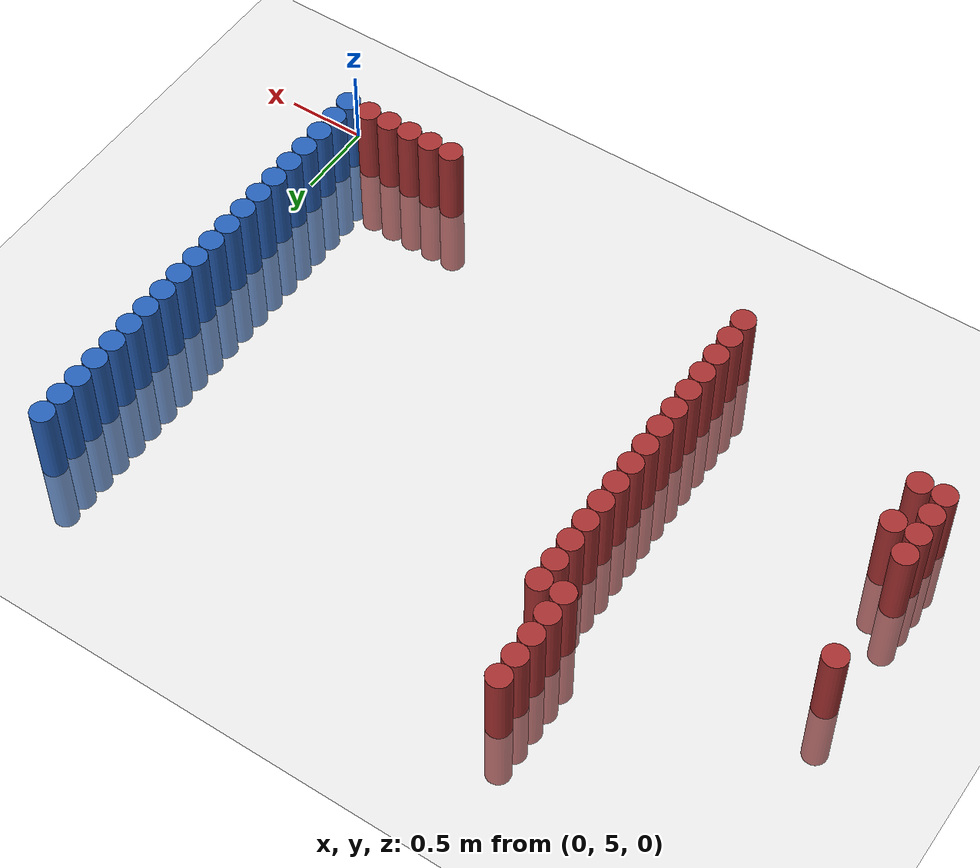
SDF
<sdf version="1.6">
 <world name="default">
  <model name="ground_plane">
   <static>1</static>
   <link name="link">
    <collision name="collision">
     <geometry><plane><normal>0 0 1</normal><size>100 100</size></plane></geometry>
     <surface><friction><ode><mu>100</mu><mu2>50</mu2></ode></friction></surface>
    </collision>
    <visual name="visual">
     <cast_shadows>0</cast_shadows>
     <geometry><plane><normal>0 0 1</normal><size>100 100</size></plane></geometry>
     <material>
      <script><uri>file://media/materials/scripts/gazebo.material</uri><name>Gazebo/Grey</name></script>
     </material>
    </visual>
   </link>
  </model>
  <model name="unit_cylinder_247">
   <static>1</static>
   <pose>-4.425000 5.775000 0.000000 0.000000 0.000000 0.000000</pose>
   <link name="link">
    <inertial>
     <mass>1</mass>
     <inertia><ixx>0.145833</ixx><ixy>0</ixy><ixz>0</ixz><iyy>0.145833</iyy><iyz>0</iyz><izz>0.125</izz></inertia>
    </inertial>
    <collision name="collision">
     <geometry><cylinder><radius>0.075000</radius><length>1</length></cylinder></geometry>
    </collision>
    <visual name="visual">
     <geometry><cylinder><radius>0.075000</radius><length>1</length></cylinder></geometry>
     <material>
      <ambient>0.648000 0.192000 0.192000 1</ambient>
      <diffuse>0.648000 0.192000 0.192000 1</diffuse>
     </material>
     <material>
      <script><name>Gazebo/Grey</name><uri>file://media/materials/scripts/gazebo.material</uri></script>
     </material>
    </visual>
   </link>
  </model>
  <model name="unit_cylinder_248">
   <static>1</static>
   <pose>-4.425000 5.925000 0.000000 0.000000 0.000000 0.000000</pose>
   <link name="link">
    <inertial>
     <mass>1</mass>
     <inertia><ixx>0.145833</ixx><ixy>0</ixy><ixz>0</ixz><iyy>0.145833</iyy><iyz>0</iyz><izz>0.125</izz></inertia>
    </inertial>
    <collision name="collision">
     <geometry><cylinder><radius>0.075000</radius><length>1</length></cylinder></geometry>
    </collision>
    <visual name="visual">
     <geometry><cylinder><radius>0.075000</radius><length>1</length></cylinder></geometry>
     <material>
      <ambient>0.648000 0.192000 0.192000 1</ambient>
      <diffuse>0.648000 0.192000 0.192000 1</diffuse>
     </material>
     <material>
      <script><name>Gazebo/Grey</name><uri>file://media/materials/scripts/gazebo.material</uri></script>
     </material>
    </visual>
   </link>
  </model>
  <model name="unit_cylinder_249">
   <static>1</static>
   <pose>-4.425000 6.075000 0.000000 0.000000 0.000000 0.000000</pose>
   <link name="link">
    <inertial>
     <mass>1</mass>
     <inertia><ixx>0.145833</ixx><ixy>0</ixy><ixz>0</ixz><iyy>0.145833</iyy><iyz>0</iyz><izz>0.125</izz></inertia>
    </inertial>
    <collision name="collision">
     <geometry><cylinder><radius>0.075000</radius><length>1</length></cylinder></geometry>
    </collision>
    <visual name="visual">
     <geometry><cylinder><radius>0.075000</radius><length>1</length></cylinder></geometry>
     <material>
      <ambient>0.648000 0.192000 0.192000 1</ambient>
      <diffuse>0.648000 0.192000 0.192000 1</diffuse>
     </material>
     <material>
      <script><name>Gazebo/Grey</name><uri>file://media/materials/scripts/gazebo.material</uri></script>
     </material>
    </visual>
   </link>
  </model>
  <model name="unit_cylinder_250">
   <static>1</static>
   <pose>-4.425000 6.225000 0.000000 0.000000 0.000000 0.000000</pose>
   <link name="link">
    <inertial>
     <mass>1</mass>
     <inertia><ixx>0.145833</ixx><ixy>0</ixy><ixz>0</ixz><iyy>0.145833</iyy><iyz>0</iyz><izz>0.125</izz></inertia>
    </inertial>
    <collision name="collision">
     <geometry><cylinder><radius>0.075000</radius><length>1</length></cylinder></geometry>
    </collision>
    <visual name="visual">
     <geometry><cylinder><radius>0.075000</radius><length>1</length></cylinder></geometry>
     <material>
      <ambient>0.648000 0.192000 0.192000 1</ambient>
      <diffuse>0.648000 0.192000 0.192000 1</diffuse>
     </material>
     <material>
      <script><name>Gazebo/Grey</name><uri>file://media/materials/scripts/gazebo.material</uri></script>
     </material>
    </visual>
   </link>
  </model>
  <model name="unit_cylinder_251">
   <static>1</static>
   <pose>-4.425000 6.975000 0.000000 0.000000 0.000000 0.000000</pose>
   <link name="link">
    <inertial>
     <mass>1</mass>
     <inertia><ixx>0.145833</ixx><ixy>0</ixy><ixz>0</ixz><iyy>0.145833</iyy><iyz>0</iyz><izz>0.125</izz></inertia>
    </inertial>
    <collision name="collision">
     <geometry><cylinder><radius>0.075000</radius><length>1</length></cylinder></geometry>
    </collision>
    <visual name="visual">
     <geometry><cylinder><radius>0.075000</radius><length>1</length></cylinder></geometry>
     <material>
      <ambient>0.648000 0.192000 0.192000 1</ambient>
      <diffuse>0.648000 0.192000 0.192000 1</diffuse>
     </material>
     <material>
      <script><name>Gazebo/Grey</name><uri>file://media/materials/scripts/gazebo.material</uri></script>
     </material>
    </visual>
   </link>
  </model>
  <model name="unit_cylinder_252">
   <static>1</static>
   <pose>-4.275000 5.775000 0.000000 0.000000 0.000000 0.000000</pose>
   <link name="link">
    <inertial>
     <mass>1</mass>
     <inertia><ixx>0.145833</ixx><ixy>0</ixy><ixz>0</ixz><iyy>0.145833</iyy><iyz>0</iyz><izz>0.125</izz></inertia>
    </inertial>
    <collision name="collision">
     <geometry><cylinder><radius>0.075000</radius><length>1</length></cylinder></geometry>
    </collision>
    <visual name="visual">
     <geometry><cylinder><radius>0.075000</radius><length>1</length></cylinder></geometry>
     <material>
      <ambient>0.648000 0.192000 0.192000 1</ambient>
      <diffuse>0.648000 0.192000 0.192000 1</diffuse>
     </material>
     <material>
      <script><name>Gazebo/Grey</name><uri>file://media/materials/scripts/gazebo.material</uri></script>
     </material>
    </visual>
   </link>
  </model>
  <model name="unit_cylinder_253">
   <static>1</static>
   <pose>-4.275000 6.075000 0.000000 0.000000 0.000000 0.000000</pose>
   <link name="link">
    <inertial>
     <mass>1</mass>
     <inertia><ixx>0.145833</ixx><ixy>0</ixy><ixz>0</ixz><iyy>0.145833</iyy><iyz>0</iyz><izz>0.125</izz></inertia>
    </inertial>
    <collision name="collision">
     <geometry><cylinder><radius>0.075000</radius><length>1</length></cylinder></geometry>
    </collision>
    <visual name="visual">
     <geometry><cylinder><radius>0.075000</radius><length>1</length></cylinder></geometry>
     <material>
      <ambient>0.648000 0.192000 0.192000 1</ambient>
      <diffuse>0.648000 0.192000 0.192000 1</diffuse>
     </material>
     <material>
      <script><name>Gazebo/Grey</name><uri>file://media/materials/scripts/gazebo.material</uri></script>
     </material>
    </visual>
   </link>
  </model>
  <model name="unit_cylinder_275">
   <static>1</static>
   <pose>-3.075000 7.425000 0.000000 0.000000 0.000000 0.000000</pose>
   <link name="link">
    <inertial>
     <mass>1</mass>
     <inertia><ixx>0.145833</ixx><ixy>0</ixy><ixz>0</ixz><iyy>0.145833</iyy><iyz>0</iyz><izz>0.125</izz></inertia>
    </inertial>
    <collision name="collision">
     <geometry><cylinder><radius>0.075000</radius><length>1</length></cylinder></geometry>
    </collision>
    <visual name="visual">
     <geometry><cylinder><radius>0.075000</radius><length>1</length></cylinder></geometry>
     <material>
      <ambient>0.648000 0.192000 0.192000 1</ambient>
      <diffuse>0.648000 0.192000 0.192000 1</diffuse>
     </material>
     <material>
      <script><name>Gazebo/Grey</name><uri>file://media/materials/scripts/gazebo.material</uri></script>
     </material>
    </visual>
   </link>
  </model>
  <model name="unit_cylinder_276">
   <static>1</static>
   <pose>-3.075000 7.575000 0.000000 0.000000 0.000000 0.000000</pose>
   <link name="link">
    <inertial>
     <mass>1</mass>
     <inertia><ixx>0.145833</ixx><ixy>0</ixy><ixz>0</ixz><iyy>0.145833</iyy><iyz>0</iyz><izz>0.125</izz></inertia>
    </inertial>
    <collision name="collision">
     <geometry><cylinder><radius>0.075000</radius><length>1</length></cylinder></geometry>
    </collision>
    <visual name="visual">
     <geometry><cylinder><radius>0.075000</radius><length>1</length></cylinder></geometry>
     <material>
      <ambient>0.648000 0.192000 0.192000 1</ambient>
      <diffuse>0.648000 0.192000 0.192000 1</diffuse>
     </material>
     <material>
      <script><name>Gazebo/Grey</name><uri>file://media/materials/scripts/gazebo.material</uri></script>
     </material>
    </visual>
   </link>
  </model>
  <model name="unit_cylinder_277">
   <static>1</static>
   <pose>-3.075000 7.725000 0.000000 0.000000 0.000000 0.000000</pose>
   <link name="link">
    <inertial>
     <mass>1</mass>
     <inertia><ixx>0.145833</ixx><ixy>0</ixy><ixz>0</ixz><iyy>0.145833</iyy><iyz>0</iyz><izz>0.125</izz></inertia>
    </inertial>
    <collision name="collision">
     <geometry><cylinder><radius>0.075000</radius><length>1</length></cylinder></geometry>
    </collision>
    <visual name="visual">
     <geometry><cylinder><radius>0.075000</radius><length>1</length></cylinder></geometry>
     <material>
      <ambient>0.648000 0.192000 0.192000 1</ambient>
      <diffuse>0.648000 0.192000 0.192000 1</diffuse>
     </material>
     <material>
      <script><name>Gazebo/Grey</name><uri>file://media/materials/scripts/gazebo.material</uri></script>
     </material>
    </visual>
   </link>
  </model>
  <model name="unit_cylinder_278">
   <static>1</static>
   <pose>-3.075000 7.875000 0.000000 0.000000 0.000000 0.000000</pose>
   <link name="link">
    <inertial>
     <mass>1</mass>
     <inertia><ixx>0.145833</ixx><ixy>0</ixy><ixz>0</ixz><iyy>0.145833</iyy><iyz>0</iyz><izz>0.125</izz></inertia>
    </inertial>
    <collision name="collision">
     <geometry><cylinder><radius>0.075000</radius><length>1</length></cylinder></geometry>
    </collision>
    <visual name="visual">
     <geometry><cylinder><radius>0.075000</radius><length>1</length></cylinder></geometry>
     <material>
      <ambient>0.648000 0.192000 0.192000 1</ambient>
      <diffuse>0.648000 0.192000 0.192000 1</diffuse>
     </material>
     <material>
      <script><name>Gazebo/Grey</name><uri>file://media/materials/scripts/gazebo.material</uri></script>
     </material>
    </visual>
   </link>
  </model>
  <model name="unit_cylinder_279">
   <static>1</static>
   <pose>-3.075000 8.025000 0.000000 0.000000 0.000000 0.000000</pose>
   <link name="link">
    <inertial>
     <mass>1</mass>
     <inertia><ixx>0.145833</ixx><ixy>0</ixy><ixz>0</ixz><iyy>0.145833</iyy><iyz>0</iyz><izz>0.125</izz></inertia>
    </inertial>
    <collision name="collision">
     <geometry><cylinder><radius>0.075000</radius><length>1</length></cylinder></geometry>
    </collision>
    <visual name="visual">
     <geometry><cylinder><radius>0.075000</radius><length>1</length></cylinder></geometry>
     <material>
      <ambient>0.648000 0.192000 0.192000 1</ambient>
      <diffuse>0.648000 0.192000 0.192000 1</diffuse>
     </material>
     <material>
      <script><name>Gazebo/Grey</name><uri>file://media/materials/scripts/gazebo.material</uri></script>
     </material>
    </visual>
   </link>
  </model>
  <model name="unit_cylinder_284">
   <static>1</static>
   <pose>-2.925000 5.325000 0.000000 0.000000 0.000000 0.000000</pose>
   <link name="link">
    <inertial>
     <mass>1</mass>
     <inertia><ixx>0.145833</ixx><ixy>0</ixy><ixz>0</ixz><iyy>0.145833</iyy><iyz>0</iyz><izz>0.125</izz></inertia>
    </inertial>
    <collision name="collision">
     <geometry><cylinder><radius>0.075000</radius><length>1</length></cylinder></geometry>
    </collision>
    <visual name="visual">
     <geometry><cylinder><radius>0.075000</radius><length>1</length></cylinder></geometry>
     <material>
      <ambient>0.648000 0.192000 0.192000 1</ambient>
      <diffuse>0.648000 0.192000 0.192000 1</diffuse>
     </material>
     <material>
      <script><name>Gazebo/Grey</name><uri>file://media/materials/scripts/gazebo.material</uri></script>
     </material>
    </visual>
   </link>
  </model>
  <model name="unit_cylinder_285">
   <static>1</static>
   <pose>-2.925000 5.475000 0.000000 0.000000 0.000000 0.000000</pose>
   <link name="link">
    <inertial>
     <mass>1</mass>
     <inertia><ixx>0.145833</ixx><ixy>0</ixy><ixz>0</ixz><iyy>0.145833</iyy><iyz>0</iyz><izz>0.125</izz></inertia>
    </inertial>
    <collision name="collision">
     <geometry><cylinder><radius>0.075000</radius><length>1</length></cylinder></geometry>
    </collision>
    <visual name="visual">
     <geometry><cylinder><radius>0.075000</radius><length>1</length></cylinder></geometry>
     <material>
      <ambient>0.648000 0.192000 0.192000 1</ambient>
      <diffuse>0.648000 0.192000 0.192000 1</diffuse>
     </material>
     <material>
      <script><name>Gazebo/Grey</name><uri>file://media/materials/scripts/gazebo.material</uri></script>
     </material>
    </visual>
   </link>
  </model>
  <model name="unit_cylinder_286">
   <static>1</static>
   <pose>-2.925000 5.625000 0.000000 0.000000 0.000000 0.000000</pose>
   <link name="link">
    <inertial>
     <mass>1</mass>
     <inertia><ixx>0.145833</ixx><ixy>0</ixy><ixz>0</ixz><iyy>0.145833</iyy><iyz>0</iyz><izz>0.125</izz></inertia>
    </inertial>
    <collision name="collision">
     <geometry><cylinder><radius>0.075000</radius><length>1</length></cylinder></geometry>
    </collision>
    <visual name="visual">
     <geometry><cylinder><radius>0.075000</radius><length>1</length></cylinder></geometry>
     <material>
      <ambient>0.648000 0.192000 0.192000 1</ambient>
      <diffuse>0.648000 0.192000 0.192000 1</diffuse>
     </material>
     <material>
      <script><name>Gazebo/Grey</name><uri>file://media/materials/scripts/gazebo.material</uri></script>
     </material>
    </visual>
   </link>
  </model>
  <model name="unit_cylinder_287">
   <static>1</static>
   <pose>-2.925000 5.775000 0.000000 0.000000 0.000000 0.000000</pose>
   <link name="link">
    <inertial>
     <mass>1</mass>
     <inertia><ixx>0.145833</ixx><ixy>0</ixy><ixz>0</ixz><iyy>0.145833</iyy><iyz>0</iyz><izz>0.125</izz></inertia>
    </inertial>
    <collision name="collision">
     <geometry><cylinder><radius>0.075000</radius><length>1</length></cylinder></geometry>
    </collision>
    <visual name="visual">
     <geometry><cylinder><radius>0.075000</radius><length>1</length></cylinder></geometry>
     <material>
      <ambient>0.648000 0.192000 0.192000 1</ambient>
      <diffuse>0.648000 0.192000 0.192000 1</diffuse>
     </material>
     <material>
      <script><name>Gazebo/Grey</name><uri>file://media/materials/scripts/gazebo.material</uri></script>
     </material>
    </visual>
   </link>
  </model>
  <model name="unit_cylinder_288">
   <static>1</static>
   <pose>-2.925000 5.925000 0.000000 0.000000 0.000000 0.000000</pose>
   <link name="link">
    <inertial>
     <mass>1</mass>
     <inertia><ixx>0.145833</ixx><ixy>0</ixy><ixz>0</ixz><iyy>0.145833</iyy><iyz>0</iyz><izz>0.125</izz></inertia>
    </inertial>
    <collision name="collision">
     <geometry><cylinder><radius>0.075000</radius><length>1</length></cylinder></geometry>
    </collision>
    <visual name="visual">
     <geometry><cylinder><radius>0.075000</radius><length>1</length></cylinder></geometry>
     <material>
      <ambient>0.648000 0.192000 0.192000 1</ambient>
      <diffuse>0.648000 0.192000 0.192000 1</diffuse>
     </material>
     <material>
      <script><name>Gazebo/Grey</name><uri>file://media/materials/scripts/gazebo.material</uri></script>
     </material>
    </visual>
   </link>
  </model>
  <model name="unit_cylinder_289">
   <static>1</static>
   <pose>-2.925000 6.075000 0.000000 0.000000 0.000000 0.000000</pose>
   <link name="link">
    <inertial>
     <mass>1</mass>
     <inertia><ixx>0.145833</ixx><ixy>0</ixy><ixz>0</ixz><iyy>0.145833</iyy><iyz>0</iyz><izz>0.125</izz></inertia>
    </inertial>
    <collision name="collision">
     <geometry><cylinder><radius>0.075000</radius><length>1</length></cylinder></geometry>
    </collision>
    <visual name="visual">
     <geometry><cylinder><radius>0.075000</radius><length>1</length></cylinder></geometry>
     <material>
      <ambient>0.648000 0.192000 0.192000 1</ambient>
      <diffuse>0.648000 0.192000 0.192000 1</diffuse>
     </material>
     <material>
      <script><name>Gazebo/Grey</name><uri>file://media/materials/scripts/gazebo.material</uri></script>
     </material>
    </visual>
   </link>
  </model>
  <model name="unit_cylinder_290">
   <static>1</static>
   <pose>-2.925000 6.225000 0.000000 0.000000 0.000000 0.000000</pose>
   <link name="link">
    <inertial>
     <mass>1</mass>
     <inertia><ixx>0.145833</ixx><ixy>0</ixy><ixz>0</ixz><iyy>0.145833</iyy><iyz>0</iyz><izz>0.125</izz></inertia>
    </inertial>
    <collision name="collision">
     <geometry><cylinder><radius>0.075000</radius><length>1</length></cylinder></geometry>
    </collision>
    <visual name="visual">
     <geometry><cylinder><radius>0.075000</radius><length>1</length></cylinder></geometry>
     <material>
      <ambient>0.648000 0.192000 0.192000 1</ambient>
      <diffuse>0.648000 0.192000 0.192000 1</diffuse>
     </material>
     <material>
      <script><name>Gazebo/Grey</name><uri>file://media/materials/scripts/gazebo.material</uri></script>
     </material>
    </visual>
   </link>
  </model>
  <model name="unit_cylinder_291">
   <static>1</static>
   <pose>-2.925000 6.375000 0.000000 0.000000 0.000000 0.000000</pose>
   <link name="link">
    <inertial>
     <mass>1</mass>
     <inertia><ixx>0.145833</ixx><ixy>0</ixy><ixz>0</ixz><iyy>0.145833</iyy><iyz>0</iyz><izz>0.125</izz></inertia>
    </inertial>
    <collision name="collision">
     <geometry><cylinder><radius>0.075000</radius><length>1</length></cylinder></geometry>
    </collision>
    <visual name="visual">
     <geometry><cylinder><radius>0.075000</radius><length>1</length></cylinder></geometry>
     <material>
      <ambient>0.648000 0.192000 0.192000 1</ambient>
      <diffuse>0.648000 0.192000 0.192000 1</diffuse>
     </material>
     <material>
      <script><name>Gazebo/Grey</name><uri>file://media/materials/scripts/gazebo.material</uri></script>
     </material>
    </visual>
   </link>
  </model>
  <model name="unit_cylinder_292">
   <static>1</static>
   <pose>-2.925000 6.525000 0.000000 0.000000 0.000000 0.000000</pose>
   <link name="link">
    <inertial>
     <mass>1</mass>
     <inertia><ixx>0.145833</ixx><ixy>0</ixy><ixz>0</ixz><iyy>0.145833</iyy><iyz>0</iyz><izz>0.125</izz></inertia>
    </inertial>
    <collision name="collision">
     <geometry><cylinder><radius>0.075000</radius><length>1</length></cylinder></geometry>
    </collision>
    <visual name="visual">
     <geometry><cylinder><radius>0.075000</radius><length>1</length></cylinder></geometry>
     <material>
      <ambient>0.648000 0.192000 0.192000 1</ambient>
      <diffuse>0.648000 0.192000 0.192000 1</diffuse>
     </material>
     <material>
      <script><name>Gazebo/Grey</name><uri>file://media/materials/scripts/gazebo.material</uri></script>
     </material>
    </visual>
   </link>
  </model>
  <model name="unit_cylinder_293">
   <static>1</static>
   <pose>-2.925000 6.675000 0.000000 0.000000 0.000000 0.000000</pose>
   <link name="link">
    <inertial>
     <mass>1</mass>
     <inertia><ixx>0.145833</ixx><ixy>0</ixy><ixz>0</ixz><iyy>0.145833</iyy><iyz>0</iyz><izz>0.125</izz></inertia>
    </inertial>
    <collision name="collision">
     <geometry><cylinder><radius>0.075000</radius><length>1</length></cylinder></geometry>
    </collision>
    <visual name="visual">
     <geometry><cylinder><radius>0.075000</radius><length>1</length></cylinder></geometry>
     <material>
      <ambient>0.648000 0.192000 0.192000 1</ambient>
      <diffuse>0.648000 0.192000 0.192000 1</diffuse>
     </material>
     <material>
      <script><name>Gazebo/Grey</name><uri>file://media/materials/scripts/gazebo.material</uri></script>
     </material>
    </visual>
   </link>
  </model>
  <model name="unit_cylinder_294">
   <static>1</static>
   <pose>-2.925000 6.825000 0.000000 0.000000 0.000000 0.000000</pose>
   <link name="link">
    <inertial>
     <mass>1</mass>
     <inertia><ixx>0.145833</ixx><ixy>0</ixy><ixz>0</ixz><iyy>0.145833</iyy><iyz>0</iyz><izz>0.125</izz></inertia>
    </inertial>
    <collision name="collision">
     <geometry><cylinder><radius>0.075000</radius><length>1</length></cylinder></geometry>
    </collision>
    <visual name="visual">
     <geometry><cylinder><radius>0.075000</radius><length>1</length></cylinder></geometry>
     <material>
      <ambient>0.648000 0.192000 0.192000 1</ambient>
      <diffuse>0.648000 0.192000 0.192000 1</diffuse>
     </material>
     <material>
      <script><name>Gazebo/Grey</name><uri>file://media/materials/scripts/gazebo.material</uri></script>
     </material>
    </visual>
   </link>
  </model>
  <model name="unit_cylinder_295">
   <static>1</static>
   <pose>-2.925000 6.975000 0.000000 0.000000 0.000000 0.000000</pose>
   <link name="link">
    <inertial>
     <mass>1</mass>
     <inertia><ixx>0.145833</ixx><ixy>0</ixy><ixz>0</ixz><iyy>0.145833</iyy><iyz>0</iyz><izz>0.125</izz></inertia>
    </inertial>
    <collision name="collision">
     <geometry><cylinder><radius>0.075000</radius><length>1</length></cylinder></geometry>
    </collision>
    <visual name="visual">
     <geometry><cylinder><radius>0.075000</radius><length>1</length></cylinder></geometry>
     <material>
      <ambient>0.648000 0.192000 0.192000 1</ambient>
      <diffuse>0.648000 0.192000 0.192000 1</diffuse>
     </material>
     <material>
      <script><name>Gazebo/Grey</name><uri>file://media/materials/scripts/gazebo.material</uri></script>
     </material>
    </visual>
   </link>
  </model>
  <model name="unit_cylinder_296">
   <static>1</static>
   <pose>-2.925000 7.125000 0.000000 0.000000 0.000000 0.000000</pose>
   <link name="link">
    <inertial>
     <mass>1</mass>
     <inertia><ixx>0.145833</ixx><ixy>0</ixy><ixz>0</ixz><iyy>0.145833</iyy><iyz>0</iyz><izz>0.125</izz></inertia>
    </inertial>
    <collision name="collision">
     <geometry><cylinder><radius>0.075000</radius><length>1</length></cylinder></geometry>
    </collision>
    <visual name="visual">
     <geometry><cylinder><radius>0.075000</radius><length>1</length></cylinder></geometry>
     <material>
      <ambient>0.648000 0.192000 0.192000 1</ambient>
      <diffuse>0.648000 0.192000 0.192000 1</diffuse>
     </material>
     <material>
      <script><name>Gazebo/Grey</name><uri>file://media/materials/scripts/gazebo.material</uri></script>
     </material>
    </visual>
   </link>
  </model>
  <model name="unit_cylinder_297">
   <static>1</static>
   <pose>-2.925000 7.275000 0.000000 0.000000 0.000000 0.000000</pose>
   <link name="link">
    <inertial>
     <mass>1</mass>
     <inertia><ixx>0.145833</ixx><ixy>0</ixy><ixz>0</ixz><iyy>0.145833</iyy><iyz>0</iyz><izz>0.125</izz></inertia>
    </inertial>
    <collision name="collision">
     <geometry><cylinder><radius>0.075000</radius><length>1</length></cylinder></geometry>
    </collision>
    <visual name="visual">
     <geometry><cylinder><radius>0.075000</radius><length>1</length></cylinder></geometry>
     <material>
      <ambient>0.648000 0.192000 0.192000 1</ambient>
      <diffuse>0.648000 0.192000 0.192000 1</diffuse>
     </material>
     <material>
      <script><name>Gazebo/Grey</name><uri>file://media/materials/scripts/gazebo.material</uri></script>
     </material>
    </visual>
   </link>
  </model>
  <model name="unit_cylinder_298">
   <static>1</static>
   <pose>-2.925000 7.425000 0.000000 0.000000 0.000000 0.000000</pose>
   <link name="link">
    <inertial>
     <mass>1</mass>
     <inertia><ixx>0.145833</ixx><ixy>0</ixy><ixz>0</ixz><iyy>0.145833</iyy><iyz>0</iyz><izz>0.125</izz></inertia>
    </inertial>
    <collision name="collision">
     <geometry><cylinder><radius>0.075000</radius><length>1</length></cylinder></geometry>
    </collision>
    <visual name="visual">
     <geometry><cylinder><radius>0.075000</radius><length>1</length></cylinder></geometry>
     <material>
      <ambient>0.648000 0.192000 0.192000 1</ambient>
      <diffuse>0.648000 0.192000 0.192000 1</diffuse>
     </material>
     <material>
      <script><name>Gazebo/Grey</name><uri>file://media/materials/scripts/gazebo.material</uri></script>
     </material>
    </visual>
   </link>
  </model>
  <model name="unit_cylinder_326">
   <static>1</static>
   <pose>-0.825000 5.175000 0.000000 0.000000 0.000000 0.000000</pose>
   <link name="link">
    <inertial>
     <mass>1</mass>
     <inertia><ixx>0.145833</ixx><ixy>0</ixy><ixz>0</ixz><iyy>0.145833</iyy><iyz>0</iyz><izz>0.125</izz></inertia>
    </inertial>
    <collision name="collision">
     <geometry><cylinder><radius>0.075000</radius><length>1</length></cylinder></geometry>
    </collision>
    <visual name="visual">
     <geometry><cylinder><radius>0.075000</radius><length>1</length></cylinder></geometry>
     <material>
      <ambient>0.648000 0.192000 0.192000 1</ambient>
      <diffuse>0.648000 0.192000 0.192000 1</diffuse>
     </material>
     <material>
      <script><name>Gazebo/Grey</name><uri>file://media/materials/scripts/gazebo.material</uri></script>
     </material>
    </visual>
   </link>
  </model>
  <model name="unit_cylinder_328">
   <static>1</static>
   <pose>-0.675000 5.175000 0.000000 0.000000 0.000000 0.000000</pose>
   <link name="link">
    <inertial>
     <mass>1</mass>
     <inertia><ixx>0.145833</ixx><ixy>0</ixy><ixz>0</ixz><iyy>0.145833</iyy><iyz>0</iyz><izz>0.125</izz></inertia>
    </inertial>
    <collision name="collision">
     <geometry><cylinder><radius>0.075000</radius><length>1</length></cylinder></geometry>
    </collision>
    <visual name="visual">
     <geometry><cylinder><radius>0.075000</radius><length>1</length></cylinder></geometry>
     <material>
      <ambient>0.648000 0.192000 0.192000 1</ambient>
      <diffuse>0.648000 0.192000 0.192000 1</diffuse>
     </material>
     <material>
      <script><name>Gazebo/Grey</name><uri>file://media/materials/scripts/gazebo.material</uri></script>
     </material>
    </visual>
   </link>
  </model>
  <model name="unit_cylinder_330">
   <static>1</static>
   <pose>-0.525000 5.175000 0.000000 0.000000 0.000000 0.000000</pose>
   <link name="link">
    <inertial>
     <mass>1</mass>
     <inertia><ixx>0.145833</ixx><ixy>0</ixy><ixz>0</ixz><iyy>0.145833</iyy><iyz>0</iyz><izz>0.125</izz></inertia>
    </inertial>
    <collision name="collision">
     <geometry><cylinder><radius>0.075000</radius><length>1</length></cylinder></geometry>
    </collision>
    <visual name="visual">
     <geometry><cylinder><radius>0.075000</radius><length>1</length></cylinder></geometry>
     <material>
      <ambient>0.648000 0.192000 0.192000 1</ambient>
      <diffuse>0.648000 0.192000 0.192000 1</diffuse>
     </material>
     <material>
      <script><name>Gazebo/Grey</name><uri>file://media/materials/scripts/gazebo.material</uri></script>
     </material>
    </visual>
   </link>
  </model>
  <model name="unit_cylinder_332">
   <static>1</static>
   <pose>-0.375000 5.175000 0.000000 0.000000 0.000000 0.000000</pose>
   <link name="link">
    <inertial>
     <mass>1</mass>
     <inertia><ixx>0.145833</ixx><ixy>0</ixy><ixz>0</ixz><iyy>0.145833</iyy><iyz>0</iyz><izz>0.125</izz></inertia>
    </inertial>
    <collision name="collision">
     <geometry><cylinder><radius>0.075000</radius><length>1</length></cylinder></geometry>
    </collision>
    <visual name="visual">
     <geometry><cylinder><radius>0.075000</radius><length>1</length></cylinder></geometry>
     <material>
      <ambient>0.648000 0.192000 0.192000 1</ambient>
      <diffuse>0.648000 0.192000 0.192000 1</diffuse>
     </material>
     <material>
      <script><name>Gazebo/Grey</name><uri>file://media/materials/scripts/gazebo.material</uri></script>
     </material>
    </visual>
   </link>
  </model>
  <model name="unit_cylinder_334">
   <static>1</static>
   <pose>-0.225000 5.175000 0.000000 0.000000 0.000000 0.000000</pose>
   <link name="link">
    <inertial>
     <mass>1</mass>
     <inertia><ixx>0.145833</ixx><ixy>0</ixy><ixz>0</ixz><iyy>0.145833</iyy><iyz>0</iyz><izz>0.125</izz></inertia>
    </inertial>
    <collision name="collision">
     <geometry><cylinder><radius>0.075000</radius><length>1</length></cylinder></geometry>
    </collision>
    <visual name="visual">
     <geometry><cylinder><radius>0.075000</radius><length>1</length></cylinder></geometry>
     <material>
      <ambient>0.648000 0.192000 0.192000 1</ambient>
      <diffuse>0.648000 0.192000 0.192000 1</diffuse>
     </material>
     <material>
      <script><name>Gazebo/Grey</name><uri>file://media/materials/scripts/gazebo.material</uri></script>
     </material>
    </visual>
   </link>
  </model>
  <model name="unit_cylinder_336">
   <static>1</static>
   <pose>-0.075000 5.175000 0.000000 0.000000 0.000000 0.000000</pose>
   <link name="link">
    <inertial>
     <mass>1</mass>
     <inertia><ixx>0.145833</ixx><ixy>0</ixy><ixz>0</ixz><iyy>0.145833</iyy><iyz>0</iyz><izz>0.125</izz></inertia>
    </inertial>
    <collision name="collision">
     <geometry><cylinder><radius>0.075000</radius><length>1</length></cylinder></geometry>
    </collision>
    <visual name="visual">
     <geometry><cylinder><radius>0.075000</radius><length>1</length></cylinder></geometry>
     <material>
      <ambient>0.152000 0.379000 0.720000 1</ambient>
      <diffuse>0.152000 0.379000 0.720000 1</diffuse>
     </material>
     <material>
      <script><name>Gazebo/Grey</name><uri>file://media/materials/scripts/gazebo.material</uri></script>
     </material>
    </visual>
   </link>
  </model>
  <model name="unit_cylinder_337">
   <static>1</static>
   <pose>-0.075000 5.325000 0.000000 0.000000 0.000000 0.000000</pose>
   <link name="link">
    <inertial>
     <mass>1</mass>
     <inertia><ixx>0.145833</ixx><ixy>0</ixy><ixz>0</ixz><iyy>0.145833</iyy><iyz>0</iyz><izz>0.125</izz></inertia>
    </inertial>
    <collision name="collision">
     <geometry><cylinder><radius>0.075000</radius><length>1</length></cylinder></geometry>
    </collision>
    <visual name="visual">
     <geometry><cylinder><radius>0.075000</radius><length>1</length></cylinder></geometry>
     <material>
      <ambient>0.152000 0.379000 0.720000 1</ambient>
      <diffuse>0.152000 0.379000 0.720000 1</diffuse>
     </material>
     <material>
      <script><name>Gazebo/Grey</name><uri>file://media/materials/scripts/gazebo.material</uri></script>
     </material>
    </visual>
   </link>
  </model>
  <model name="unit_cylinder_338">
   <static>1</static>
   <pose>-0.075000 5.475000 0.000000 0.000000 0.000000 0.000000</pose>
   <link name="link">
    <inertial>
     <mass>1</mass>
     <inertia><ixx>0.145833</ixx><ixy>0</ixy><ixz>0</ixz><iyy>0.145833</iyy><iyz>0</iyz><izz>0.125</izz></inertia>
    </inertial>
    <collision name="collision">
     <geometry><cylinder><radius>0.075000</radius><length>1</length></cylinder></geometry>
    </collision>
    <visual name="visual">
     <geometry><cylinder><radius>0.075000</radius><length>1</length></cylinder></geometry>
     <material>
      <ambient>0.152000 0.379000 0.720000 1</ambient>
      <diffuse>0.152000 0.379000 0.720000 1</diffuse>
     </material>
     <material>
      <script><name>Gazebo/Grey</name><uri>file://media/materials/scripts/gazebo.material</uri></script>
     </material>
    </visual>
   </link>
  </model>
  <model name="unit_cylinder_339">
   <static>1</static>
   <pose>-0.075000 5.625000 0.000000 0.000000 0.000000 0.000000</pose>
   <link name="link">
    <inertial>
     <mass>1</mass>
     <inertia><ixx>0.145833</ixx><ixy>0</ixy><ixz>0</ixz><iyy>0.145833</iyy><iyz>0</iyz><izz>0.125</izz></inertia>
    </inertial>
    <collision name="collision">
     <geometry><cylinder><radius>0.075000</radius><length>1</length></cylinder></geometry>
    </collision>
    <visual name="visual">
     <geometry><cylinder><radius>0.075000</radius><length>1</length></cylinder></geometry>
     <material>
      <ambient>0.152000 0.379000 0.720000 1</ambient>
      <diffuse>0.152000 0.379000 0.720000 1</diffuse>
     </material>
     <material>
      <script><name>Gazebo/Grey</name><uri>file://media/materials/scripts/gazebo.material</uri></script>
     </material>
    </visual>
   </link>
  </model>
  <model name="unit_cylinder_340">
   <static>1</static>
   <pose>-0.075000 5.775000 0.000000 0.000000 0.000000 0.000000</pose>
   <link name="link">
    <inertial>
     <mass>1</mass>
     <inertia><ixx>0.145833</ixx><ixy>0</ixy><ixz>0</ixz><iyy>0.145833</iyy><iyz>0</iyz><izz>0.125</izz></inertia>
    </inertial>
    <collision name="collision">
     <geometry><cylinder><radius>0.075000</radius><length>1</length></cylinder></geometry>
    </collision>
    <visual name="visual">
     <geometry><cylinder><radius>0.075000</radius><length>1</length></cylinder></geometry>
     <material>
      <ambient>0.152000 0.379000 0.720000 1</ambient>
      <diffuse>0.152000 0.379000 0.720000 1</diffuse>
     </material>
     <material>
      <script><name>Gazebo/Grey</name><uri>file://media/materials/scripts/gazebo.material</uri></script>
     </material>
    </visual>
   </link>
  </model>
  <model name="unit_cylinder_341">
   <static>1</static>
   <pose>-0.075000 5.925000 0.000000 0.000000 0.000000 0.000000</pose>
   <link name="link">
    <inertial>
     <mass>1</mass>
     <inertia><ixx>0.145833</ixx><ixy>0</ixy><ixz>0</ixz><iyy>0.145833</iyy><iyz>0</iyz><izz>0.125</izz></inertia>
    </inertial>
    <collision name="collision">
     <geometry><cylinder><radius>0.075000</radius><length>1</length></cylinder></geometry>
    </collision>
    <visual name="visual">
     <geometry><cylinder><radius>0.075000</radius><length>1</length></cylinder></geometry>
     <material>
      <ambient>0.152000 0.379000 0.720000 1</ambient>
      <diffuse>0.152000 0.379000 0.720000 1</diffuse>
     </material>
     <material>
      <script><name>Gazebo/Grey</name><uri>file://media/materials/scripts/gazebo.material</uri></script>
     </material>
    </visual>
   </link>
  </model>
  <model name="unit_cylinder_342">
   <static>1</static>
   <pose>-0.075000 6.075000 0.000000 0.000000 0.000000 0.000000</pose>
   <link name="link">
    <inertial>
     <mass>1</mass>
     <inertia><ixx>0.145833</ixx><ixy>0</ixy><ixz>0</ixz><iyy>0.145833</iyy><iyz>0</iyz><izz>0.125</izz></inertia>
    </inertial>
    <collision name="collision">
     <geometry><cylinder><radius>0.075000</radius><length>1</length></cylinder></geometry>
    </collision>
    <visual name="visual">
     <geometry><cylinder><radius>0.075000</radius><length>1</length></cylinder></geometry>
     <material>
      <ambient>0.152000 0.379000 0.720000 1</ambient>
      <diffuse>0.152000 0.379000 0.720000 1</diffuse>
     </material>
     <material>
      <script><name>Gazebo/Grey</name><uri>file://media/materials/scripts/gazebo.material</uri></script>
     </material>
    </visual>
   </link>
  </model>
  <model name="unit_cylinder_343">
   <static>1</static>
   <pose>-0.075000 6.225000 0.000000 0.000000 0.000000 0.000000</pose>
   <link name="link">
    <inertial>
     <mass>1</mass>
     <inertia><ixx>0.145833</ixx><ixy>0</ixy><ixz>0</ixz><iyy>0.145833</iyy><iyz>0</iyz><izz>0.125</izz></inertia>
    </inertial>
    <collision name="collision">
     <geometry><cylinder><radius>0.075000</radius><length>1</length></cylinder></geometry>
    </collision>
    <visual name="visual">
     <geometry><cylinder><radius>0.075000</radius><length>1</length></cylinder></geometry>
     <material>
      <ambient>0.152000 0.379000 0.720000 1</ambient>
      <diffuse>0.152000 0.379000 0.720000 1</diffuse>
     </material>
     <material>
      <script><name>Gazebo/Grey</name><uri>file://media/materials/scripts/gazebo.material</uri></script>
     </material>
    </visual>
   </link>
  </model>
  <model name="unit_cylinder_344">
   <static>1</static>
   <pose>-0.075000 6.375000 0.000000 0.000000 0.000000 0.000000</pose>
   <link name="link">
    <inertial>
     <mass>1</mass>
     <inertia><ixx>0.145833</ixx><ixy>0</ixy><ixz>0</ixz><iyy>0.145833</iyy><iyz>0</iyz><izz>0.125</izz></inertia>
    </inertial>
    <collision name="collision">
     <geometry><cylinder><radius>0.075000</radius><length>1</length></cylinder></geometry>
    </collision>
    <visual name="visual">
     <geometry><cylinder><radius>0.075000</radius><length>1</length></cylinder></geometry>
     <material>
      <ambient>0.152000 0.379000 0.720000 1</ambient>
      <diffuse>0.152000 0.379000 0.720000 1</diffuse>
     </material>
     <material>
      <script><name>Gazebo/Grey</name><uri>file://media/materials/scripts/gazebo.material</uri></script>
     </material>
    </visual>
   </link>
  </model>
  <model name="unit_cylinder_345">
   <static>1</static>
   <pose>-0.075000 6.525000 0.000000 0.000000 0.000000 0.000000</pose>
   <link name="link">
    <inertial>
     <mass>1</mass>
     <inertia><ixx>0.145833</ixx><ixy>0</ixy><ixz>0</ixz><iyy>0.145833</iyy><iyz>0</iyz><izz>0.125</izz></inertia>
    </inertial>
    <collision name="collision">
     <geometry><cylinder><radius>0.075000</radius><length>1</length></cylinder></geometry>
    </collision>
    <visual name="visual">
     <geometry><cylinder><radius>0.075000</radius><length>1</length></cylinder></geometry>
     <material>
      <ambient>0.152000 0.379000 0.720000 1</ambient>
      <diffuse>0.152000 0.379000 0.720000 1</diffuse>
     </material>
     <material>
      <script><name>Gazebo/Grey</name><uri>file://media/materials/scripts/gazebo.material</uri></script>
     </material>
    </visual>
   </link>
  </model>
  <model name="unit_cylinder_346">
   <static>1</static>
   <pose>-0.075000 6.675000 0.000000 0.000000 0.000000 0.000000</pose>
   <link name="link">
    <inertial>
     <mass>1</mass>
     <inertia><ixx>0.145833</ixx><ixy>0</ixy><ixz>0</ixz><iyy>0.145833</iyy><iyz>0</iyz><izz>0.125</izz></inertia>
    </inertial>
    <collision name="collision">
     <geometry><cylinder><radius>0.075000</radius><length>1</length></cylinder></geometry>
    </collision>
    <visual name="visual">
     <geometry><cylinder><radius>0.075000</radius><length>1</length></cylinder></geometry>
     <material>
      <ambient>0.152000 0.379000 0.720000 1</ambient>
      <diffuse>0.152000 0.379000 0.720000 1</diffuse>
     </material>
     <material>
      <script><name>Gazebo/Grey</name><uri>file://media/materials/scripts/gazebo.material</uri></script>
     </material>
    </visual>
   </link>
  </model>
  <model name="unit_cylinder_347">
   <static>1</static>
   <pose>-0.075000 6.825000 0.000000 0.000000 0.000000 0.000000</pose>
   <link name="link">
    <inertial>
     <mass>1</mass>
     <inertia><ixx>0.145833</ixx><ixy>0</ixy><ixz>0</ixz><iyy>0.145833</iyy><iyz>0</iyz><izz>0.125</izz></inertia>
    </inertial>
    <collision name="collision">
     <geometry><cylinder><radius>0.075000</radius><length>1</length></cylinder></geometry>
    </collision>
    <visual name="visual">
     <geometry><cylinder><radius>0.075000</radius><length>1</length></cylinder></geometry>
     <material>
      <ambient>0.152000 0.379000 0.720000 1</ambient>
      <diffuse>0.152000 0.379000 0.720000 1</diffuse>
     </material>
     <material>
      <script><name>Gazebo/Grey</name><uri>file://media/materials/scripts/gazebo.material</uri></script>
     </material>
    </visual>
   </link>
  </model>
  <model name="unit_cylinder_348">
   <static>1</static>
   <pose>-0.075000 6.975000 0.000000 0.000000 0.000000 0.000000</pose>
   <link name="link">
    <inertial>
     <mass>1</mass>
     <inertia><ixx>0.145833</ixx><ixy>0</ixy><ixz>0</ixz><iyy>0.145833</iyy><iyz>0</iyz><izz>0.125</izz></inertia>
    </inertial>
    <collision name="collision">
     <geometry><cylinder><radius>0.075000</radius><length>1</length></cylinder></geometry>
    </collision>
    <visual name="visual">
     <geometry><cylinder><radius>0.075000</radius><length>1</length></cylinder></geometry>
     <material>
      <ambient>0.152000 0.379000 0.720000 1</ambient>
      <diffuse>0.152000 0.379000 0.720000 1</diffuse>
     </material>
     <material>
      <script><name>Gazebo/Grey</name><uri>file://media/materials/scripts/gazebo.material</uri></script>
     </material>
    </visual>
   </link>
  </model>
  <model name="unit_cylinder_349">
   <static>1</static>
   <pose>-0.075000 7.125000 0.000000 0.000000 0.000000 0.000000</pose>
   <link name="link">
    <inertial>
     <mass>1</mass>
     <inertia><ixx>0.145833</ixx><ixy>0</ixy><ixz>0</ixz><iyy>0.145833</iyy><iyz>0</iyz><izz>0.125</izz></inertia>
    </inertial>
    <collision name="collision">
     <geometry><cylinder><radius>0.075000</radius><length>1</length></cylinder></geometry>
    </collision>
    <visual name="visual">
     <geometry><cylinder><radius>0.075000</radius><length>1</length></cylinder></geometry>
     <material>
      <ambient>0.152000 0.379000 0.720000 1</ambient>
      <diffuse>0.152000 0.379000 0.720000 1</diffuse>
     </material>
     <material>
      <script><name>Gazebo/Grey</name><uri>file://media/materials/scripts/gazebo.material</uri></script>
     </material>
    </visual>
   </link>
  </model>
  <model name="unit_cylinder_350">
   <static>1</static>
   <pose>-0.075000 7.275000 0.000000 0.000000 0.000000 0.000000</pose>
   <link name="link">
    <inertial>
     <mass>1</mass>
     <inertia><ixx>0.145833</ixx><ixy>0</ixy><ixz>0</ixz><iyy>0.145833</iyy><iyz>0</iyz><izz>0.125</izz></inertia>
    </inertial>
    <collision name="collision">
     <geometry><cylinder><radius>0.075000</radius><length>1</length></cylinder></geometry>
    </collision>
    <visual name="visual">
     <geometry><cylinder><radius>0.075000</radius><length>1</length></cylinder></geometry>
     <material>
      <ambient>0.152000 0.379000 0.720000 1</ambient>
      <diffuse>0.152000 0.379000 0.720000 1</diffuse>
     </material>
     <material>
      <script><name>Gazebo/Grey</name><uri>file://media/materials/scripts/gazebo.material</uri></script>
     </material>
    </visual>
   </link>
  </model>
  <model name="unit_cylinder_351">
   <static>1</static>
   <pose>-0.075000 7.425000 0.000000 0.000000 0.000000 0.000000</pose>
   <link name="link">
    <inertial>
     <mass>1</mass>
     <inertia><ixx>0.145833</ixx><ixy>0</ixy><ixz>0</ixz><iyy>0.145833</iyy><iyz>0</iyz><izz>0.125</izz></inertia>
    </inertial>
    <collision name="collision">
     <geometry><cylinder><radius>0.075000</radius><length>1</length></cylinder></geometry>
    </collision>
    <visual name="visual">
     <geometry><cylinder><radius>0.075000</radius><length>1</length></cylinder></geometry>
     <material>
      <ambient>0.152000 0.379000 0.720000 1</ambient>
      <diffuse>0.152000 0.379000 0.720000 1</diffuse>
     </material>
     <material>
      <script><name>Gazebo/Grey</name><uri>file://media/materials/scripts/gazebo.material</uri></script>
     </material>
    </visual>
   </link>
  </model>
  <model name="unit_cylinder_352">
   <static>1</static>
   <pose>-0.075000 7.575000 0.000000 0.000000 0.000000 0.000000</pose>
   <link name="link">
    <inertial>
     <mass>1</mass>
     <inertia><ixx>0.145833</ixx><ixy>0</ixy><ixz>0</ixz><iyy>0.145833</iyy><iyz>0</iyz><izz>0.125</izz></inertia>
    </inertial>
    <collision name="collision">
     <geometry><cylinder><radius>0.075000</radius><length>1</length></cylinder></geometry>
    </collision>
    <visual name="visual">
     <geometry><cylinder><radius>0.075000</radius><length>1</length></cylinder></geometry>
     <material>
      <ambient>0.152000 0.379000 0.720000 1</ambient>
      <diffuse>0.152000 0.379000 0.720000 1</diffuse>
     </material>
     <material>
      <script><name>Gazebo/Grey</name><uri>file://media/materials/scripts/gazebo.material</uri></script>
     </material>
    </visual>
   </link>
  </model>
  <model name="unit_cylinder_353">
   <static>1</static>
   <pose>-0.075000 7.725000 0.000000 0.000000 0.000000 0.000000</pose>
   <link name="link">
    <inertial>
     <mass>1</mass>
     <inertia><ixx>0.145833</ixx><ixy>0</ixy><ixz>0</ixz><iyy>0.145833</iyy><iyz>0</iyz><izz>0.125</izz></inertia>
    </inertial>
    <collision name="collision">
     <geometry><cylinder><radius>0.075000</radius><length>1</length></cylinder></geometry>
    </collision>
    <visual name="visual">
     <geometry><cylinder><radius>0.075000</radius><length>1</length></cylinder></geometry>
     <material>
      <ambient>0.152000 0.379000 0.720000 1</ambient>
      <diffuse>0.152000 0.379000 0.720000 1</diffuse>
     </material>
     <material>
      <script><name>Gazebo/Grey</name><uri>file://media/materials/scripts/gazebo.material</uri></script>
     </material>
    </visual>
   </link>
  </model>
  <model name="unit_cylinder_354">
   <static>1</static>
   <pose>-0.075000 7.875000 0.000000 0.000000 0.000000 0.000000</pose>
   <link name="link">
    <inertial>
     <mass>1</mass>
     <inertia><ixx>0.145833</ixx><ixy>0</ixy><ixz>0</ixz><iyy>0.145833</iyy><iyz>0</iyz><izz>0.125</izz></inertia>
    </inertial>
    <collision name="collision">
     <geometry><cylinder><radius>0.075000</radius><length>1</length></cylinder></geometry>
    </collision>
    <visual name="visual">
     <geometry><cylinder><radius>0.075000</radius><length>1</length></cylinder></geometry>
     <material>
      <ambient>0.152000 0.379000 0.720000 1</ambient>
      <diffuse>0.152000 0.379000 0.720000 1</diffuse>
     </material>
     <material>
      <script><name>Gazebo/Grey</name><uri>file://media/materials/scripts/gazebo.material</uri></script>
     </material>
    </visual>
   </link>
  </model>
  <model name="unit_cylinder_355">
   <static>1</static>
   <pose>-0.075000 8.025000 0.000000 0.000000 0.000000 0.000000</pose>
   <link name="link">
    <inertial>
     <mass>1</mass>
     <inertia><ixx>0.145833</ixx><ixy>0</ixy><ixz>0</ixz><iyy>0.145833</iyy><iyz>0</iyz><izz>0.125</izz></inertia>
    </inertial>
    <collision name="collision">
     <geometry><cylinder><radius>0.075000</radius><length>1</length></cylinder></geometry>
    </collision>
    <visual name="visual">
     <geometry><cylinder><radius>0.075000</radius><length>1</length></cylinder></geometry>
     <material>
      <ambient>0.152000 0.379000 0.720000 1</ambient>
      <diffuse>0.152000 0.379000 0.720000 1</diffuse>
     </material>
     <material>
      <script><name>Gazebo/Grey</name><uri>file://media/materials/scripts/gazebo.material</uri></script>
     </material>
    </visual>
   </link>
  </model>
 </world>
</sdf>
